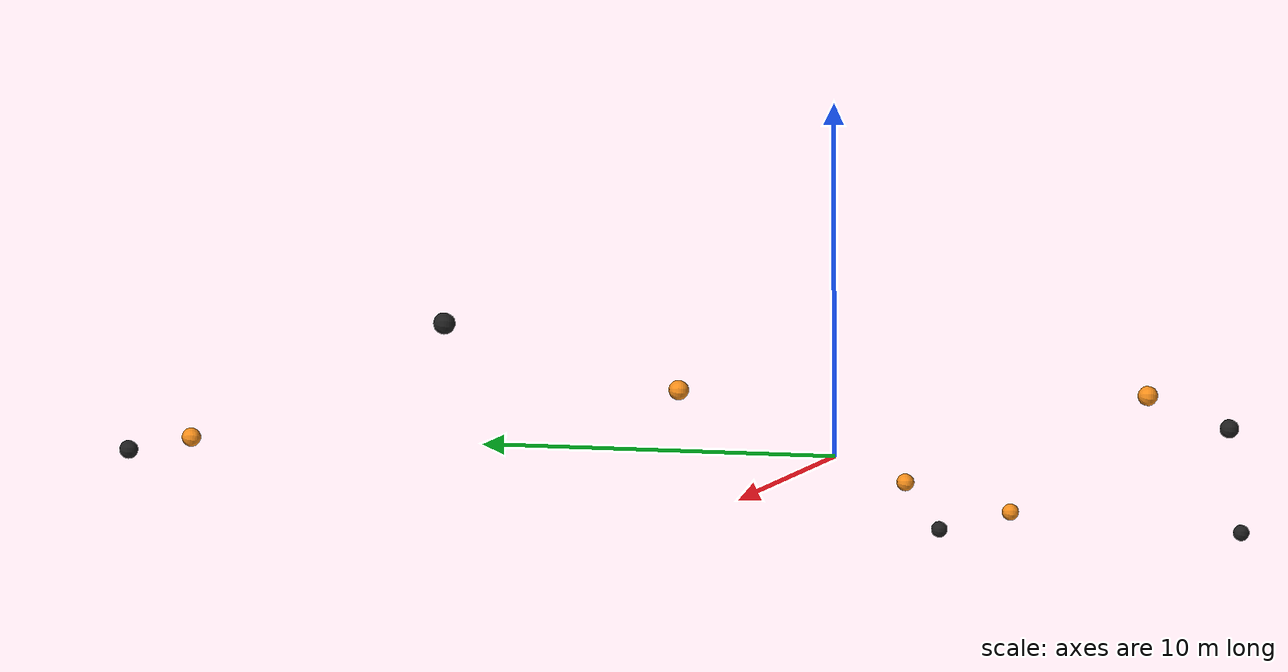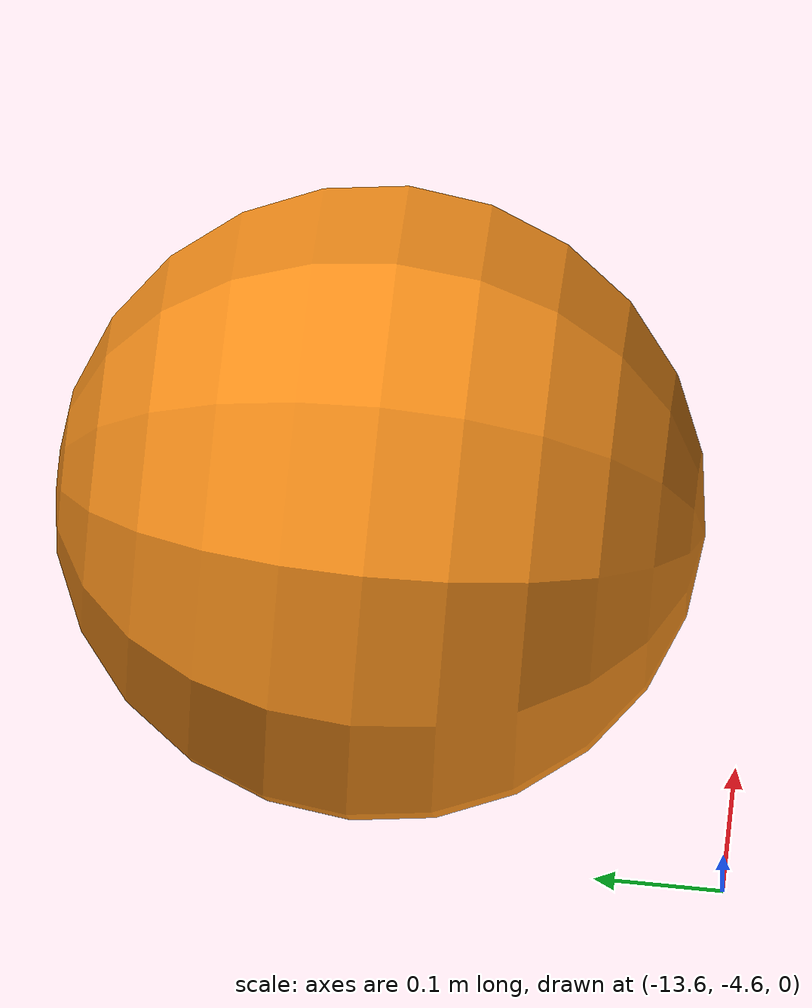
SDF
<?xml version="1.0"?>
<!-- automatically generated by the 'generate_avoid_obstacles_buoys.py' script -->
<sdf version="1.6">
  <model name="obstacles_phase2_2">
    <include>
      <name>mb_round_buoy_orange_0</name>
      <pose>0.6919153538635712 17.878504152592562 0.0 0 0 0 </pose>
      <uri>model://mb_round_buoy_orange</uri>
    </include>

    <include>
      <name>mb_round_buoy_orange_1</name>
      <pose>10.618390375876277 -8.704166241315491 0.0 0 0 0 </pose>
      <uri>model://mb_round_buoy_orange</uri>
    </include>

    <include>
      <name>mb_round_buoy_orange_2</name>
      <pose>-11.158185469533898 7.448883409498674 0.0 0 0 0 </pose>
      <uri>model://mb_round_buoy_orange</uri>
    </include>

    <include>
      <name>mb_round_buoy_orange_3</name>
      <pose>-13.31443187599775 -4.302301341398774 0.0 0 0 0 </pose>
      <uri>model://mb_round_buoy_orange</uri>
    </include>

    <include>
      <name>mb_round_buoy_orange_4</name>
      <pose>4.722093890112369 -3.5227962056501596 0.0 0 0 0 </pose>
      <uri>model://mb_round_buoy_orange</uri>
    </include>

    <include>
      <name>mb_round_buoy_black_0</name>
      <pose>-19.901404751964552 15.361287294884193 0.0 0 0 0 </pose>
      <uri>model://mb_round_buoy_black</uri>
    </include>

    <include>
      <name>mb_round_buoy_black_1</name>
      <pose>15.397901535058942 -7.9836124253407625 0.0 0 0 0 </pose>
      <uri>model://mb_round_buoy_black</uri>
    </include>

    <include>
      <name>mb_round_buoy_black_2</name>
      <pose>3.5832746085885816 19.137076640593236 0.0 0 0 0 </pose>
      <uri>model://mb_round_buoy_black</uri>
    </include>

    <include>
      <name>mb_round_buoy_black_3</name>
      <pose>13.803752885052447 -17.39698243771226 0.0 0 0 0 </pose>
      <uri>model://mb_round_buoy_black</uri>
    </include>

    <include>
      <name>mb_round_buoy_black_4</name>
      <pose>-8.210221411305376 -8.482622361310144 0.0 0 0 0 </pose>
      <uri>model://mb_round_buoy_black</uri>
    </include>

  </model>
</sdf>

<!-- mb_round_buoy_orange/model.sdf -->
<sdf version="1.6">
  <model name="mb_round_buoy_orange">
    <link name="link">
      <inertial>
        <pose>0 0 -2 0 0 0</pose>
        <!-- Mass determined based on buoyancy geometry so object
             floats at mid-point of sphere -->
        <mass>3.5</mass>
        <!-- Mark only - based on cylinder -->
        <inertia>
          <ixx>1.0</ixx>
          <ixy>0</ixy>
          <ixz>0</ixz>
          <iyy>1.0</iyy>
          <iyz>0</iyz>
          <izz>0.1</izz>
        </inertia>
      </inertial>
      <collision name="collision">
        <geometry>
          <sphere>
            <radius>0.25</radius>
          </sphere>
        </geometry>
      </collision>
      <visual name="visual">
        <geometry>
	        <mesh><uri>model://mb_round_buoy_orange/meshes/mb_round_buoy.dae</uri></mesh>
        </geometry>
        <material>
          <script>
            <uri>model://mb_round_buoy_orange/materials/scripts/mb_round_buoy.material</uri>
            <name>mb_round_buoy/Orange</name>
          </script>
        </material>
      </visual>
    </link>
    <plugin name="BuoyancyPlugin" filename="libbuoyancy_gazebo_plugin.so">
      <wave_model>ocean_waves</wave_model>
      <fluid_density>1000</fluid_density>
      <fluid_level>0.0</fluid_level>
      <linear_drag>25.0</linear_drag>
      <angular_drag>2.0</angular_drag>
      <buoyancy name="buoyancy_sphere">
        <link_name>link</link_name>
        <pose>0 0 0.02 0 0 0</pose>
        <geometry>
          <sphere>
            <radius>0.235</radius>
          </sphere>
        </geometry>
      </buoyancy>
    </plugin>
  </model>
</sdf>

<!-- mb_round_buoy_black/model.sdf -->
<sdf version="1.6">
  <model name="mb_round_buoy_black">
    <link name="link">
      <inertial>
        <pose>0 0 -2 0 0 0</pose>
        <!-- Mass determined based on buoyancy geometry so object
             floats at mid-point of sphere -->
        <mass>3.5</mass>
        <!-- Mark only - based on cylinder -->
        <inertia>
          <ixx>1.0</ixx>
          <ixy>0</ixy>
          <ixz>0</ixz>
          <iyy>1.0</iyy>
          <iyz>0</iyz>
          <izz>0.1</izz>
        </inertia>
      </inertial>
      <collision name="collision">
        <geometry>
          <sphere>
            <radius>0.25</radius>
          </sphere>
        </geometry>
      </collision>
      <visual name="visual">
        <geometry>
	        <mesh><uri>model://mb_round_buoy_orange/meshes/mb_round_buoy.dae</uri></mesh>
        </geometry>
        <material>
          <script>
            <uri>file://media/materials/scripts/gazebo.material</uri>
            <name>Gazebo/Black</name>
          </script>
        </material>
      </visual>
    </link>
    <plugin name="BuoyancyPlugin" filename="libbuoyancy_gazebo_plugin.so">
      <wave_model>ocean_waves</wave_model>
      <fluid_density>1000</fluid_density>
      <fluid_level>0.0</fluid_level>
      <linear_drag>25.0</linear_drag>
      <angular_drag>2.0</angular_drag>
      <buoyancy name="buoyancy_sphere">
        <link_name>link</link_name>
        <pose>0 0 0.02 0 0 0</pose>
        <geometry>
          <sphere>
            <radius>0.235</radius>
          </sphere>
        </geometry>
      </buoyancy>
    </plugin>
  </model>
</sdf>
